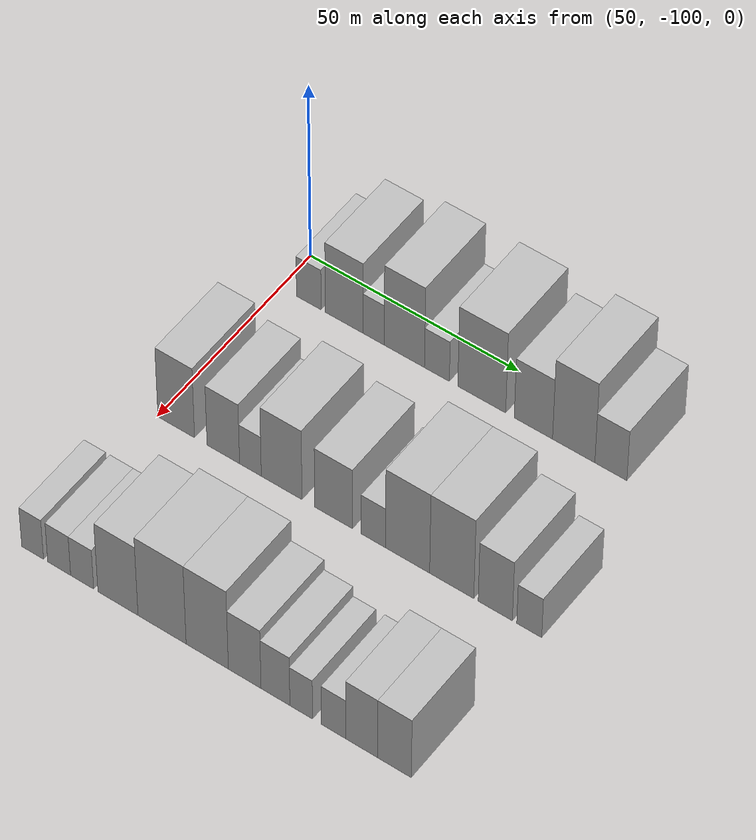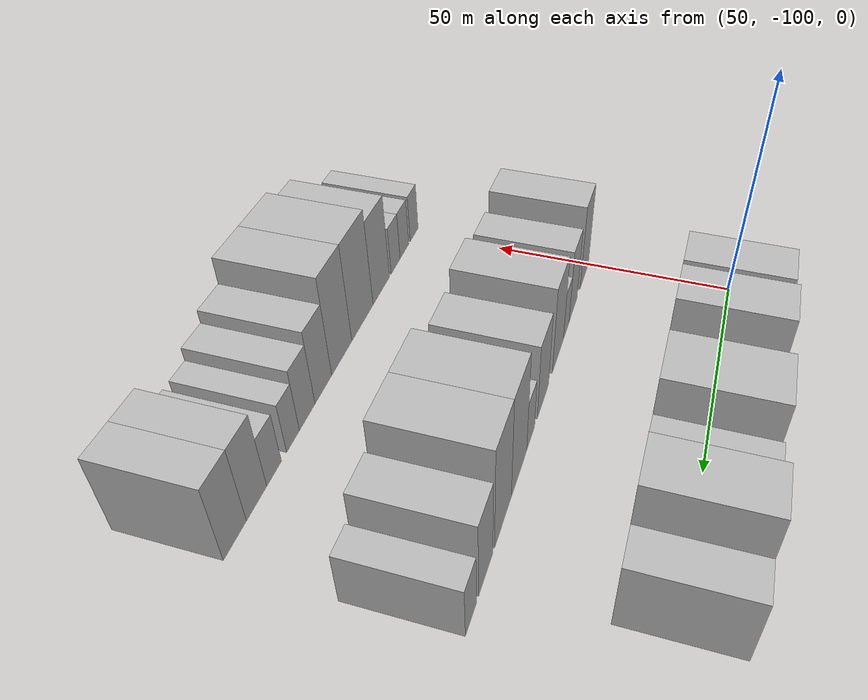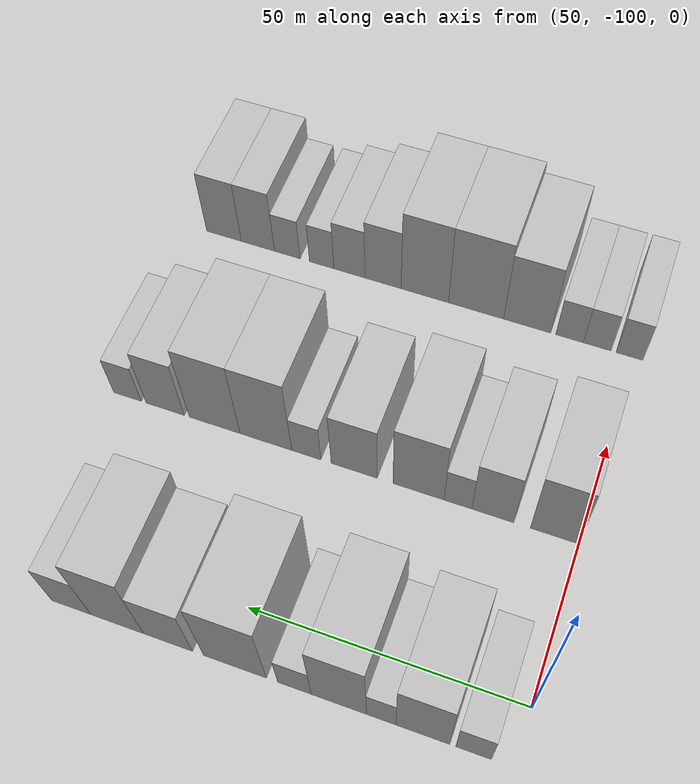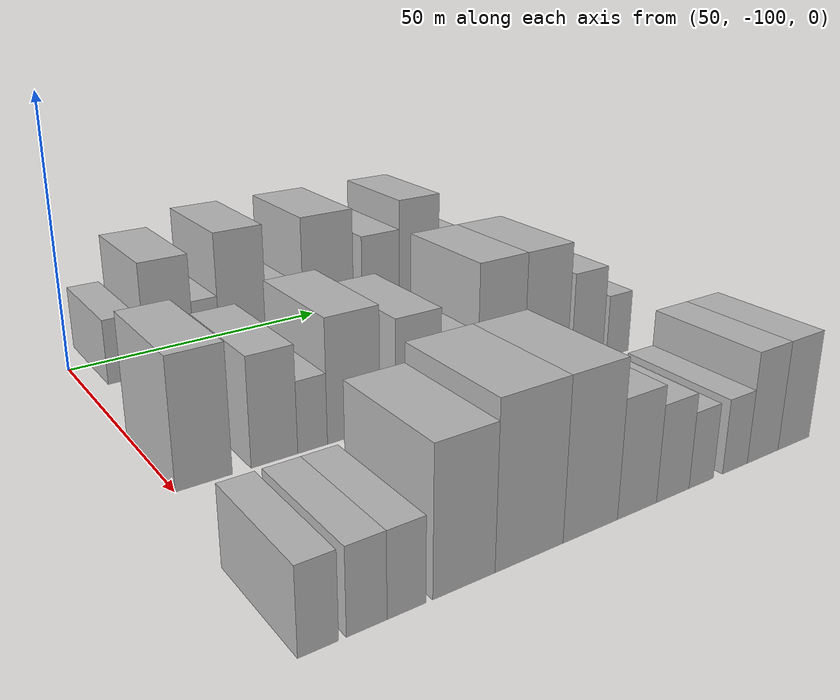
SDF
<sdf version="1.6">
 <world name="default">
  <model name="building_35">
   <static>1</static>
   <pose>50.0000 -93.1847 0 0.000000 0.000000 0.000000</pose>
   <link name="link">
    <pose>0 0 6.00 0 0 0</pose>
    <collision name="collision"><geometry><box><size>20.0000 5.9812 12.0000</size></box></geometry></collision>
    <visual name="visual">
     <cast_shadows>0</cast_shadows>
     <geometry><box><size>20.0000 5.9812 12.0000</size></box></geometry>
     <material>
      <script>
       <uri>model://HANNAS_wall/materials/scripts</uri>
       <uri>model://HANNAS_wall/materials/textures</uri>
       <name>vrc/HANNAS_wall</name>
      </script>
     </material>
    </visual>
   </link>
  </model>
  <model name="building_36">
   <static>1</static>
   <pose>50.0000 -84.6144 0 0.000000 0.000000 0.000000</pose>
   <link name="link">
    <pose>0 0 10.50 0 0 0</pose>
    <collision name="collision"><geometry><box><size>20.0000 9.1593 21.0000</size></box></geometry></collision>
    <visual name="visual">
     <cast_shadows>0</cast_shadows>
     <geometry><box><size>20.0000 9.1593 21.0000</size></box></geometry>
     <material>
      <script>
       <uri>model://HANNAS_wall/materials/scripts</uri>
       <uri>model://HANNAS_wall/materials/textures</uri>
       <name>vrc/HANNAS_wall</name>
      </script>
     </material>
    </visual>
   </link>
  </model>
  <model name="building_37">
   <static>1</static>
   <pose>50.0000 -77.5212 0 0.000000 0.000000 0.000000</pose>
   <link name="link">
    <pose>0 0 6.00 0 0 0</pose>
    <collision name="collision"><geometry><box><size>20.0000 5.0271 12.0000</size></box></geometry></collision>
    <visual name="visual">
     <cast_shadows>0</cast_shadows>
     <geometry><box><size>20.0000 5.0271 12.0000</size></box></geometry>
     <material>
      <script>
       <uri>model://HANNAS_wall/materials/scripts</uri>
       <uri>model://HANNAS_wall/materials/textures</uri>
       <name>vrc/HANNAS_wall</name>
      </script>
     </material>
    </visual>
   </link>
  </model>
  <model name="building_38">
   <static>1</static>
   <pose>50.0000 -70.1932 0 0.000000 0.000000 0.000000</pose>
   <link name="link">
    <pose>0 0 12.00 0 0 0</pose>
    <collision name="collision"><geometry><box><size>20.0000 9.6289 24.0000</size></box></geometry></collision>
    <visual name="visual">
     <cast_shadows>0</cast_shadows>
     <geometry><box><size>20.0000 9.6289 24.0000</size></box></geometry>
     <material>
      <script>
       <uri>model://HANNAS_wall/materials/scripts</uri>
       <uri>model://HANNAS_wall/materials/textures</uri>
       <name>vrc/HANNAS_wall</name>
      </script>
     </material>
    </visual>
   </link>
  </model>
  <model name="building_39">
   <static>1</static>
   <pose>50.0000 -62.4221 0 0.000000 0.000000 0.000000</pose>
   <link name="link">
    <pose>0 0 6.00 0 0 0</pose>
    <collision name="collision"><geometry><box><size>20.0000 5.9132 12.0000</size></box></geometry></collision>
    <visual name="visual">
     <cast_shadows>0</cast_shadows>
     <geometry><box><size>20.0000 5.9132 12.0000</size></box></geometry>
     <material>
      <script>
       <uri>model://HANNAS_wall/materials/scripts</uri>
       <uri>model://HANNAS_wall/materials/textures</uri>
       <name>vrc/HANNAS_wall</name>
      </script>
     </material>
    </visual>
   </link>
  </model>
  <model name="building_40">
   <static>1</static>
   <pose>50.0000 -51.8165 0 0.000000 0.000000 0.000000</pose>
   <link name="link">
    <pose>0 0 12.00 0 0 0</pose>
    <collision name="collision"><geometry><box><size>20.0000 11.2980 24.0000</size></box></geometry></collision>
    <visual name="visual">
     <cast_shadows>0</cast_shadows>
     <geometry><box><size>20.0000 11.2980 24.0000</size></box></geometry>
     <material>
      <script>
       <uri>model://HANNAS_wall/materials/scripts</uri>
       <uri>model://HANNAS_wall/materials/textures</uri>
       <name>vrc/HANNAS_wall</name>
      </script>
     </material>
    </visual>
   </link>
  </model>
  <model name="building_41">
   <static>1</static>
   <pose>50.0000 -39.6942 0 0.000000 0.000000 0.000000</pose>
   <link name="link">
    <pose>0 0 9.00 0 0 0</pose>
    <collision name="collision"><geometry><box><size>20.0000 8.9466 18.0000</size></box></geometry></collision>
    <visual name="visual">
     <cast_shadows>0</cast_shadows>
     <geometry><box><size>20.0000 8.9466 18.0000</size></box></geometry>
     <material>
      <script>
       <uri>model://HANNAS_wall/materials/scripts</uri>
       <uri>model://HANNAS_wall/materials/textures</uri>
       <name>vrc/HANNAS_wall</name>
      </script>
     </material>
    </visual>
   </link>
  </model>
  <model name="building_42">
   <static>1</static>
   <pose>50.0000 -30.3065 0 0.000000 0.000000 0.000000</pose>
   <link name="link">
    <pose>0 0 12.00 0 0 0</pose>
    <collision name="collision"><geometry><box><size>20.0000 9.8288 24.0000</size></box></geometry></collision>
    <visual name="visual">
     <cast_shadows>0</cast_shadows>
     <geometry><box><size>20.0000 9.8288 24.0000</size></box></geometry>
     <material>
      <script>
       <uri>model://HANNAS_wall/materials/scripts</uri>
       <uri>model://HANNAS_wall/materials/textures</uri>
       <name>vrc/HANNAS_wall</name>
      </script>
     </material>
    </visual>
   </link>
  </model>
  <model name="building_43">
   <static>1</static>
   <pose>50.0000 -21.6989 0 0.000000 0.000000 0.000000</pose>
   <link name="link">
    <pose>0 0 7.50 0 0 0</pose>
    <collision name="collision"><geometry><box><size>20.0000 7.3866 15.0000</size></box></geometry></collision>
    <visual name="visual">
     <cast_shadows>0</cast_shadows>
     <geometry><box><size>20.0000 7.3866 15.0000</size></box></geometry>
     <material>
      <script>
       <uri>model://HANNAS_wall/materials/scripts</uri>
       <uri>model://HANNAS_wall/materials/textures</uri>
       <name>vrc/HANNAS_wall</name>
      </script>
     </material>
    </visual>
   </link>
  </model>
  <model name="building_116">
   <static>1</static>
   <pose>90.0000 -95.5177 0 0.000000 0.000000 0.000000</pose>
   <link name="link">
    <pose>0 0 10.50 0 0 0</pose>
    <collision name="collision"><geometry><box><size>20.0000 8.8087 21.0000</size></box></geometry></collision>
    <visual name="visual">
     <cast_shadows>0</cast_shadows>
     <geometry><box><size>20.0000 8.8087 21.0000</size></box></geometry>
     <material>
      <script>
       <uri>model://HANNAS_wall/materials/scripts</uri>
       <uri>model://HANNAS_wall/materials/textures</uri>
       <name>vrc/HANNAS_wall</name>
      </script>
     </material>
    </visual>
   </link>
  </model>
  <model name="building_117">
   <static>1</static>
   <pose>90.0000 -84.2253 0 0.000000 0.000000 0.000000</pose>
   <link name="link">
    <pose>0 0 9.00 0 0 0</pose>
    <collision name="collision"><geometry><box><size>20.0000 7.7761 18.0000</size></box></geometry></collision>
    <visual name="visual">
     <cast_shadows>0</cast_shadows>
     <geometry><box><size>20.0000 7.7761 18.0000</size></box></geometry>
     <material>
      <script>
       <uri>model://HANNAS_wall/materials/scripts</uri>
       <uri>model://HANNAS_wall/materials/textures</uri>
       <name>vrc/HANNAS_wall</name>
      </script>
     </material>
    </visual>
   </link>
  </model>
  <model name="building_118">
   <static>1</static>
   <pose>90.0000 -77.7504 0 0.000000 0.000000 0.000000</pose>
   <link name="link">
    <pose>0 0 6.00 0 0 0</pose>
    <collision name="collision"><geometry><box><size>20.0000 5.1737 12.0000</size></box></geometry></collision>
    <visual name="visual">
     <cast_shadows>0</cast_shadows>
     <geometry><box><size>20.0000 5.1737 12.0000</size></box></geometry>
     <material>
      <script>
       <uri>model://HANNAS_wall/materials/scripts</uri>
       <uri>model://HANNAS_wall/materials/textures</uri>
       <name>vrc/HANNAS_wall</name>
      </script>
     </material>
    </visual>
   </link>
  </model>
  <model name="building_119">
   <static>1</static>
   <pose>90.0000 -70.3456 0 0.000000 0.000000 0.000000</pose>
   <link name="link">
    <pose>0 0 10.50 0 0 0</pose>
    <collision name="collision"><geometry><box><size>20.0000 9.6360 21.0000</size></box></geometry></collision>
    <visual name="visual">
     <cast_shadows>0</cast_shadows>
     <geometry><box><size>20.0000 9.6360 21.0000</size></box></geometry>
     <material>
      <script>
       <uri>model://HANNAS_wall/materials/scripts</uri>
       <uri>model://HANNAS_wall/materials/textures</uri>
       <name>vrc/HANNAS_wall</name>
      </script>
     </material>
    </visual>
   </link>
  </model>
  <model name="building_120">
   <static>1</static>
   <pose>90.0000 -58.0974 0 0.000000 0.000000 0.000000</pose>
   <link name="link">
    <pose>0 0 9.00 0 0 0</pose>
    <collision name="collision"><geometry><box><size>20.0000 8.8603 18.0000</size></box></geometry></collision>
    <visual name="visual">
     <cast_shadows>0</cast_shadows>
     <geometry><box><size>20.0000 8.8603 18.0000</size></box></geometry>
     <material>
      <script>
       <uri>model://HANNAS_wall/materials/scripts</uri>
       <uri>model://HANNAS_wall/materials/textures</uri>
       <name>vrc/HANNAS_wall</name>
      </script>
     </material>
    </visual>
   </link>
  </model>
  <model name="building_121">
   <static>1</static>
   <pose>90.0000 -48.8310 0 0.000000 0.000000 0.000000</pose>
   <link name="link">
    <pose>0 0 6.00 0 0 0</pose>
    <collision name="collision"><geometry><box><size>20.0000 5.6724 12.0000</size></box></geometry></collision>
    <visual name="visual">
     <cast_shadows>0</cast_shadows>
     <geometry><box><size>20.0000 5.6724 12.0000</size></box></geometry>
     <material>
      <script>
       <uri>model://HANNAS_wall/materials/scripts</uri>
       <uri>model://HANNAS_wall/materials/textures</uri>
       <name>vrc/HANNAS_wall</name>
      </script>
     </material>
    </visual>
   </link>
  </model>
  <model name="building_122">
   <static>1</static>
   <pose>90.0000 -40.8787 0 0.000000 0.000000 0.000000</pose>
   <link name="link">
    <pose>0 0 12.00 0 0 0</pose>
    <collision name="collision"><geometry><box><size>20.0000 10.2322 24.0000</size></box></geometry></collision>
    <visual name="visual">
     <cast_shadows>0</cast_shadows>
     <geometry><box><size>20.0000 10.2322 24.0000</size></box></geometry>
     <material>
      <script>
       <uri>model://HANNAS_wall/materials/scripts</uri>
       <uri>model://HANNAS_wall/materials/textures</uri>
       <name>vrc/HANNAS_wall</name>
      </script>
     </material>
    </visual>
   </link>
  </model>
  <model name="building_123">
   <static>1</static>
   <pose>90.0000 -30.6779 0 0.000000 0.000000 0.000000</pose>
   <link name="link">
    <pose>0 0 12.00 0 0 0</pose>
    <collision name="collision"><geometry><box><size>20.0000 10.1693 24.0000</size></box></geometry></collision>
    <visual name="visual">
     <cast_shadows>0</cast_shadows>
     <geometry><box><size>20.0000 10.1693 24.0000</size></box></geometry>
     <material>
      <script>
       <uri>model://HANNAS_wall/materials/scripts</uri>
       <uri>model://HANNAS_wall/materials/textures</uri>
       <name>vrc/HANNAS_wall</name>
      </script>
     </material>
    </visual>
   </link>
  </model>
  <model name="building_124">
   <static>1</static>
   <pose>90.0000 -20.6944 0 0.000000 0.000000 0.000000</pose>
   <link name="link">
    <pose>0 0 9.00 0 0 0</pose>
    <collision name="collision"><geometry><box><size>20.0000 7.7977 18.0000</size></box></geometry></collision>
    <visual name="visual">
     <cast_shadows>0</cast_shadows>
     <geometry><box><size>20.0000 7.7977 18.0000</size></box></geometry>
     <material>
      <script>
       <uri>model://HANNAS_wall/materials/scripts</uri>
       <uri>model://HANNAS_wall/materials/textures</uri>
       <name>vrc/HANNAS_wall</name>
      </script>
     </material>
    </visual>
   </link>
  </model>
  <model name="building_125">
   <static>1</static>
   <pose>90.0000 -12.9630 0 0.000000 0.000000 0.000000</pose>
   <link name="link">
    <pose>0 0 6.00 0 0 0</pose>
    <collision name="collision"><geometry><box><size>20.0000 5.6653 12.0000</size></box></geometry></collision>
    <visual name="visual">
     <cast_shadows>0</cast_shadows>
     <geometry><box><size>20.0000 5.6653 12.0000</size></box></geometry>
     <material>
      <script>
       <uri>model://HANNAS_wall/materials/scripts</uri>
       <uri>model://HANNAS_wall/materials/textures</uri>
       <name>vrc/HANNAS_wall</name>
      </script>
     </material>
    </visual>
   </link>
  </model>
  <model name="building_193">
   <static>1</static>
   <pose>130.0000 -99.2510 0 0.000000 0.000000 0.000000</pose>
   <link name="link">
    <pose>0 0 6.00 0 0 0</pose>
    <collision name="collision"><geometry><box><size>20.0000 5.2111 12.0000</size></box></geometry></collision>
    <visual name="visual">
     <cast_shadows>0</cast_shadows>
     <geometry><box><size>20.0000 5.2111 12.0000</size></box></geometry>
     <material>
      <script>
       <uri>model://HANNAS_wall/materials/scripts</uri>
       <uri>model://HANNAS_wall/materials/textures</uri>
       <name>vrc/HANNAS_wall</name>
      </script>
     </material>
    </visual>
   </link>
  </model>
  <model name="building_194">
   <static>1</static>
   <pose>130.0000 -92.9142 0 0.000000 0.000000 0.000000</pose>
   <link name="link">
    <pose>0 0 6.00 0 0 0</pose>
    <collision name="collision"><geometry><box><size>20.0000 5.4625 12.0000</size></box></geometry></collision>
    <visual name="visual">
     <cast_shadows>0</cast_shadows>
     <geometry><box><size>20.0000 5.4625 12.0000</size></box></geometry>
     <material>
      <script>
       <uri>model://HANNAS_wall/materials/scripts</uri>
       <uri>model://HANNAS_wall/materials/textures</uri>
       <name>vrc/HANNAS_wall</name>
      </script>
     </material>
    </visual>
   </link>
  </model>
  <model name="building_195">
   <static>1</static>
   <pose>130.0000 -87.4469 0 0.000000 0.000000 0.000000</pose>
   <link name="link">
    <pose>0 0 6.00 0 0 0</pose>
    <collision name="collision"><geometry><box><size>20.0000 5.4720 12.0000</size></box></geometry></collision>
    <visual name="visual">
     <cast_shadows>0</cast_shadows>
     <geometry><box><size>20.0000 5.4720 12.0000</size></box></geometry>
     <material>
      <script>
       <uri>model://HANNAS_wall/materials/scripts</uri>
       <uri>model://HANNAS_wall/materials/textures</uri>
       <name>vrc/HANNAS_wall</name>
      </script>
     </material>
    </visual>
   </link>
  </model>
  <model name="building_196">
   <static>1</static>
   <pose>130.0000 -78.9801 0 0.000000 0.000000 0.000000</pose>
   <link name="link">
    <pose>0 0 10.50 0 0 0</pose>
    <collision name="collision"><geometry><box><size>20.0000 9.4615 21.0000</size></box></geometry></collision>
    <visual name="visual">
     <cast_shadows>0</cast_shadows>
     <geometry><box><size>20.0000 9.4615 21.0000</size></box></geometry>
     <material>
      <script>
       <uri>model://HANNAS_wall/materials/scripts</uri>
       <uri>model://HANNAS_wall/materials/textures</uri>
       <name>vrc/HANNAS_wall</name>
      </script>
     </material>
    </visual>
   </link>
  </model>
  <model name="building_197">
   <static>1</static>
   <pose>130.0000 -68.6174 0 0.000000 0.000000 0.000000</pose>
   <link name="link">
    <pose>0 0 12.00 0 0 0</pose>
    <collision name="collision"><geometry><box><size>20.0000 11.2640 24.0000</size></box></geometry></collision>
    <visual name="visual">
     <cast_shadows>0</cast_shadows>
     <geometry><box><size>20.0000 11.2640 24.0000</size></box></geometry>
     <material>
      <script>
       <uri>model://HANNAS_wall/materials/scripts</uri>
       <uri>model://HANNAS_wall/materials/textures</uri>
       <name>vrc/HANNAS_wall</name>
      </script>
     </material>
    </visual>
   </link>
  </model>
  <model name="building_198">
   <static>1</static>
   <pose>130.0000 -58.0772 0 0.000000 0.000000 0.000000</pose>
   <link name="link">
    <pose>0 0 12.00 0 0 0</pose>
    <collision name="collision"><geometry><box><size>20.0000 9.8164 24.0000</size></box></geometry></collision>
    <visual name="visual">
     <cast_shadows>0</cast_shadows>
     <geometry><box><size>20.0000 9.8164 24.0000</size></box></geometry>
     <material>
      <script>
       <uri>model://HANNAS_wall/materials/scripts</uri>
       <uri>model://HANNAS_wall/materials/textures</uri>
       <name>vrc/HANNAS_wall</name>
      </script>
     </material>
    </visual>
   </link>
  </model>
  <model name="building_199">
   <static>1</static>
   <pose>130.0000 -49.3986 0 0.000000 0.000000 0.000000</pose>
   <link name="link">
    <pose>0 0 9.00 0 0 0</pose>
    <collision name="collision"><geometry><box><size>20.0000 7.5407 18.0000</size></box></geometry></collision>
    <visual name="visual">
     <cast_shadows>0</cast_shadows>
     <geometry><box><size>20.0000 7.5407 18.0000</size></box></geometry>
     <material>
      <script>
       <uri>model://HANNAS_wall/materials/scripts</uri>
       <uri>model://HANNAS_wall/materials/textures</uri>
       <name>vrc/HANNAS_wall</name>
      </script>
     </material>
    </visual>
   </link>
  </model>
  <model name="building_200">
   <static>1</static>
   <pose>130.0000 -42.3165 0 0.000000 0.000000 0.000000</pose>
   <link name="link">
    <pose>0 0 7.50 0 0 0</pose>
    <collision name="collision"><geometry><box><size>20.0000 6.6236 15.0000</size></box></geometry></collision>
    <visual name="visual">
     <cast_shadows>0</cast_shadows>
     <geometry><box><size>20.0000 6.6236 15.0000</size></box></geometry>
     <material>
      <script>
       <uri>model://HANNAS_wall/materials/scripts</uri>
       <uri>model://HANNAS_wall/materials/textures</uri>
       <name>vrc/HANNAS_wall</name>
      </script>
     </material>
    </visual>
   </link>
  </model>
  <model name="building_201">
   <static>1</static>
   <pose>130.0000 -36.4114 0 0.000000 0.000000 0.000000</pose>
   <link name="link">
    <pose>0 0 6.00 0 0 0</pose>
    <collision name="collision"><geometry><box><size>20.0000 5.1865 12.0000</size></box></geometry></collision>
    <visual name="visual">
     <cast_shadows>0</cast_shadows>
     <geometry><box><size>20.0000 5.1865 12.0000</size></box></geometry>
     <material>
      <script>
       <uri>model://HANNAS_wall/materials/scripts</uri>
       <uri>model://HANNAS_wall/materials/textures</uri>
       <name>vrc/HANNAS_wall</name>
      </script>
     </material>
    </visual>
   </link>
  </model>
  <model name="building_202">
   <static>1</static>
   <pose>130.0000 -29.0500 0 0.000000 0.000000 0.000000</pose>
   <link name="link">
    <pose>0 0 6.00 0 0 0</pose>
    <collision name="collision"><geometry><box><size>20.0000 5.5363 12.0000</size></box></geometry></collision>
    <visual name="visual">
     <cast_shadows>0</cast_shadows>
     <geometry><box><size>20.0000 5.5363 12.0000</size></box></geometry>
     <material>
      <script>
       <uri>model://HANNAS_wall/materials/scripts</uri>
       <uri>model://HANNAS_wall/materials/textures</uri>
       <name>vrc/HANNAS_wall</name>
      </script>
     </material>
    </visual>
   </link>
  </model>
  <model name="building_203">
   <static>1</static>
   <pose>130.0000 -22.6785 0 0.000000 0.000000 0.000000</pose>
   <link name="link">
    <pose>0 0 9.00 0 0 0</pose>
    <collision name="collision"><geometry><box><size>20.0000 7.2068 18.0000</size></box></geometry></collision>
    <visual name="visual">
     <cast_shadows>0</cast_shadows>
     <geometry><box><size>20.0000 7.2068 18.0000</size></box></geometry>
     <material>
      <script>
       <uri>model://HANNAS_wall/materials/scripts</uri>
       <uri>model://HANNAS_wall/materials/textures</uri>
       <name>vrc/HANNAS_wall</name>
      </script>
     </material>
    </visual>
   </link>
  </model>
  <model name="building_204">
   <static>1</static>
   <pose>130.0000 -15.2721 0 0.000000 0.000000 0.000000</pose>
   <link name="link">
    <pose>0 0 9.00 0 0 0</pose>
    <collision name="collision"><geometry><box><size>20.0000 7.6059 18.0000</size></box></geometry></collision>
    <visual name="visual">
     <cast_shadows>0</cast_shadows>
     <geometry><box><size>20.0000 7.6059 18.0000</size></box></geometry>
     <material>
      <script>
       <uri>model://HANNAS_wall/materials/scripts</uri>
       <uri>model://HANNAS_wall/materials/textures</uri>
       <name>vrc/HANNAS_wall</name>
      </script>
     </material>
    </visual>
   </link>
  </model>
 </world>
</sdf>
